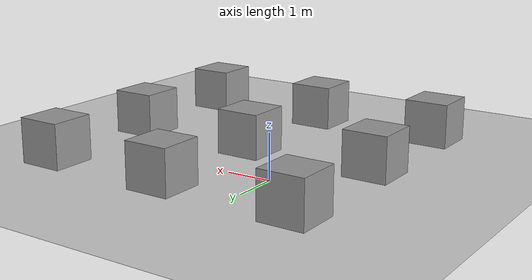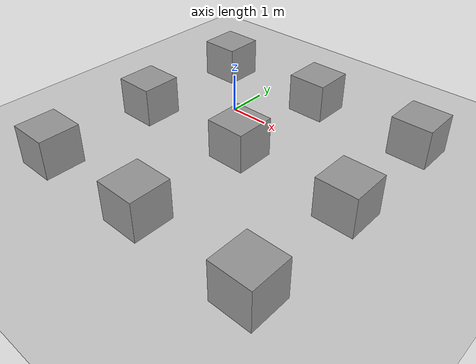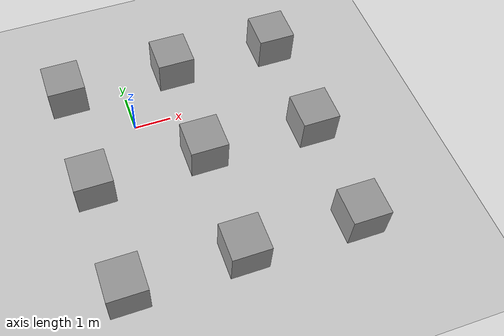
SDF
<sdf version="1.4">
 <world name="default">
  <light name="sun" type="directional">
   <pose>0 0 10 0 -0 0</pose>
   <diffuse>0.8 0.8 0.8 1</diffuse>
   <specular>0.2 0.2 0.2 1</specular>
   <attenuation>
    <range>1000</range>
    <constant>0.9</constant>
    <linear>0.01</linear>
    <quadratic>0.001</quadratic>
   </attenuation>
   <direction>-0.5 0.1 -0.9</direction>
  </light>
  <model name="ground_plane">
   <static>1</static>
   <link name="link">
    <collision name="collision">
     <geometry><plane><normal>0 0 1</normal><size>100 100</size></plane></geometry>
     <surface><friction><ode><mu>100</mu><mu2>50</mu2></ode></friction></surface>
    </collision>
    <visual name="visual">
     <cast_shadows>0</cast_shadows>
     <geometry><plane><normal>0 0 1</normal><size>100 100</size></plane></geometry>
     <material>
      <script><uri>file://media/materials/scripts/gazebo.material</uri><name>Gazebo/Grey</name></script>
     </material>
    </visual>
    <velocity_decay><linear>0</linear><angular>0</angular></velocity_decay>
   </link>
  </model>
  <physics type="ode">
   <max_step_size>0.001</max_step_size>
   <real_time_factor>1</real_time_factor>
   <real_time_update_rate>1000</real_time_update_rate>
   <gravity>0 0 -9.8</gravity>
  </physics>
  <scene><ambient>0.4 0.4 0.4 1</ambient><background>0.7 0.7 0.7 1</background><shadows>1</shadows></scene>
  <spherical_coordinates>
   <surface_model>EARTH_WGS84</surface_model>
   <latitude_deg>0</latitude_deg>
   <longitude_deg>0</longitude_deg>
   <elevation>0</elevation>
   <heading_deg>0</heading_deg>
  </spherical_coordinates>
  <model name="unit_box_1">
   <pose>-1.49809 -4.55267 0.5 0 -0 0</pose>
   <link name="link">
    <inertial>
     <mass>1</mass>
     <inertia><ixx>1</ixx><ixy>0</ixy><ixz>0</ixz><iyy>1</iyy><iyz>0</iyz><izz>1</izz></inertia>
    </inertial>
    <collision name="collision"><geometry><box><size>1 1 1</size></box></geometry></collision>
    <visual name="visual">
     <geometry><box><size>1 1 1</size></box></geometry>
     <material>
      <script><uri>file://media/materials/scripts/gazebo.material</uri><name>Gazebo/Grey</name></script>
     </material>
    </visual>
    <velocity_decay><linear>0</linear><angular>0</angular></velocity_decay>
   </link>
   <static>0</static>
  </model>
  <model name="unit_box_2">
   <pose>1.47289 -4.49493 0.5 0 -0 0</pose>
   <link name="link">
    <inertial>
     <mass>1</mass>
     <inertia><ixx>1</ixx><ixy>0</ixy><ixz>0</ixz><iyy>1</iyy><iyz>0</iyz><izz>1</izz></inertia>
    </inertial>
    <collision name="collision"><geometry><box><size>1 1 1</size></box></geometry></collision>
    <visual name="visual">
     <geometry><box><size>1 1 1</size></box></geometry>
     <material>
      <script><uri>file://media/materials/scripts/gazebo.material</uri><name>Gazebo/Grey</name></script>
     </material>
    </visual>
    <velocity_decay><linear>0</linear><angular>0</angular></velocity_decay>
   </link>
   <static>0</static>
  </model>
  <model name="unit_box_3">
   <pose>-1.54003 -1.57057 0.5 0 -0 0</pose>
   <link name="link">
    <inertial>
     <mass>1</mass>
     <inertia><ixx>1</ixx><ixy>0</ixy><ixz>0</ixz><iyy>1</iyy><iyz>0</iyz><izz>1</izz></inertia>
    </inertial>
    <collision name="collision"><geometry><box><size>1 1 1</size></box></geometry></collision>
    <visual name="visual">
     <geometry><box><size>1 1 1</size></box></geometry>
     <material>
      <script><uri>file://media/materials/scripts/gazebo.material</uri><name>Gazebo/Grey</name></script>
     </material>
    </visual>
    <velocity_decay><linear>0</linear><angular>0</angular></velocity_decay>
   </link>
   <static>0</static>
  </model>
  <model name="unit_box_4">
   <pose>1.48437 -1.46482 0.5 0 -0 0</pose>
   <link name="link">
    <inertial>
     <mass>1</mass>
     <inertia><ixx>1</ixx><ixy>0</ixy><ixz>0</ixz><iyy>1</iyy><iyz>0</iyz><izz>1</izz></inertia>
    </inertial>
    <collision name="collision"><geometry><box><size>1 1 1</size></box></geometry></collision>
    <visual name="visual">
     <geometry><box><size>1 1 1</size></box></geometry>
     <material>
      <script><uri>file://media/materials/scripts/gazebo.material</uri><name>Gazebo/Grey</name></script>
     </material>
    </visual>
    <velocity_decay><linear>0</linear><angular>0</angular></velocity_decay>
   </link>
   <static>0</static>
  </model>
  <model name="unit_box_5">
   <pose>4.49887 -4.52879 0.5 0 -0 0</pose>
   <link name="link">
    <inertial>
     <mass>1</mass>
     <inertia><ixx>1</ixx><ixy>0</ixy><ixz>0</ixz><iyy>1</iyy><iyz>0</iyz><izz>1</izz></inertia>
    </inertial>
    <collision name="collision"><geometry><box><size>1 1 1</size></box></geometry></collision>
    <visual name="visual">
     <geometry><box><size>1 1 1</size></box></geometry>
     <material>
      <script><uri>file://media/materials/scripts/gazebo.material</uri><name>Gazebo/Grey</name></script>
     </material>
    </visual>
    <velocity_decay><linear>0</linear><angular>0</angular></velocity_decay>
   </link>
   <static>0</static>
  </model>
  <model name="unit_box_6">
   <pose>4.50608 -1.54767 0.5 0 -0 0</pose>
   <link name="link">
    <inertial>
     <mass>1</mass>
     <inertia><ixx>1</ixx><ixy>0</ixy><ixz>0</ixz><iyy>1</iyy><iyz>0</iyz><izz>1</izz></inertia>
    </inertial>
    <collision name="collision"><geometry><box><size>1 1 1</size></box></geometry></collision>
    <visual name="visual">
     <geometry><box><size>1 1 1</size></box></geometry>
     <material>
      <script><uri>file://media/materials/scripts/gazebo.material</uri><name>Gazebo/Grey</name></script>
     </material>
    </visual>
    <velocity_decay><linear>0</linear><angular>0</angular></velocity_decay>
   </link>
   <static>0</static>
  </model>
  <model name="unit_box_7">
   <pose>-1.53527 1.49733 0.5 0 -0 0</pose>
   <link name="link">
    <inertial>
     <mass>1</mass>
     <inertia><ixx>1</ixx><ixy>0</ixy><ixz>0</ixz><iyy>1</iyy><iyz>0</iyz><izz>1</izz></inertia>
    </inertial>
    <collision name="collision"><geometry><box><size>1 1 1</size></box></geometry></collision>
    <visual name="visual">
     <geometry><box><size>1 1 1</size></box></geometry>
     <material>
      <script><uri>file://media/materials/scripts/gazebo.material</uri><name>Gazebo/Grey</name></script>
     </material>
    </visual>
    <velocity_decay><linear>0</linear><angular>0</angular></velocity_decay>
   </link>
   <static>0</static>
  </model>
  <model name="unit_box_8">
   <pose>1.52624 1.50042 0.5 0 -0 0</pose>
   <link name="link">
    <inertial>
     <mass>1</mass>
     <inertia><ixx>1</ixx><ixy>0</ixy><ixz>0</ixz><iyy>1</iyy><iyz>0</iyz><izz>1</izz></inertia>
    </inertial>
    <collision name="collision"><geometry><box><size>1 1 1</size></box></geometry></collision>
    <visual name="visual">
     <geometry><box><size>1 1 1</size></box></geometry>
     <material>
      <script><uri>file://media/materials/scripts/gazebo.material</uri><name>Gazebo/Grey</name></script>
     </material>
    </visual>
    <velocity_decay><linear>0</linear><angular>0</angular></velocity_decay>
   </link>
   <static>0</static>
  </model>
  <model name="unit_box_9">
   <pose>4.46627 1.45143 0.5 0 -0 0</pose>
   <link name="link">
    <inertial>
     <mass>1</mass>
     <inertia><ixx>1</ixx><ixy>0</ixy><ixz>0</ixz><iyy>1</iyy><iyz>0</iyz><izz>1</izz></inertia>
    </inertial>
    <collision name="collision"><geometry><box><size>1 1 1</size></box></geometry></collision>
    <visual name="visual">
     <geometry><box><size>1 1 1</size></box></geometry>
     <material>
      <script><uri>file://media/materials/scripts/gazebo.material</uri><name>Gazebo/Grey</name></script>
     </material>
    </visual>
    <velocity_decay><linear>0</linear><angular>0</angular></velocity_decay>
   </link>
   <static>0</static>
  </model>
 </world>
</sdf>
